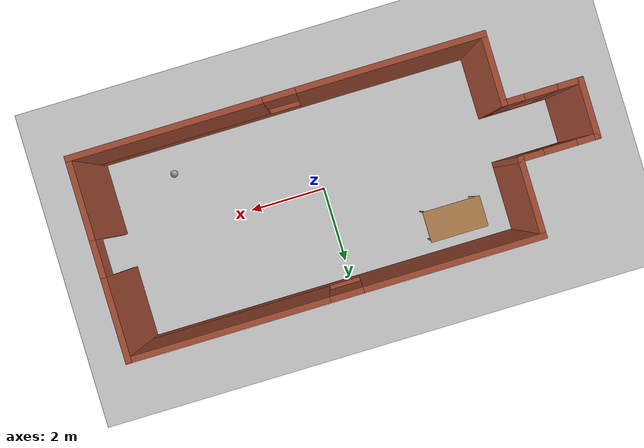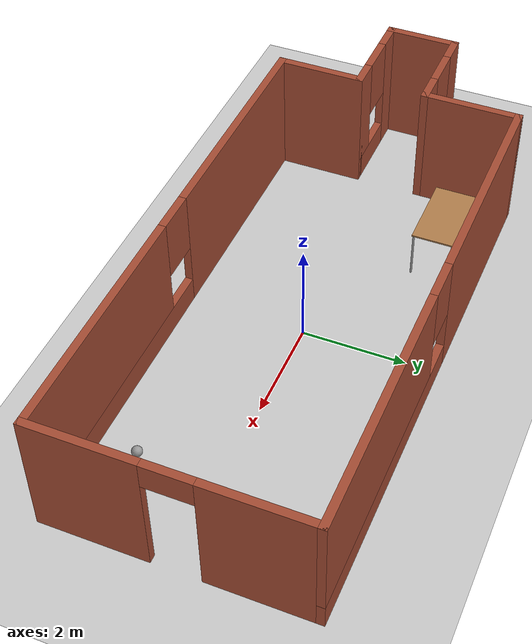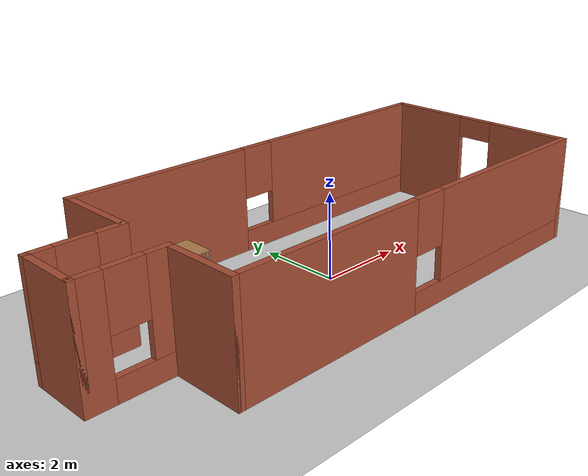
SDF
<sdf version="1.6">
 <world name="default">
  <model name="ground_plane">
   <static>1</static>
   <link name="link">
    <collision name="collision">
     <geometry><plane><normal>0 0 1</normal><size>100 100</size></plane></geometry>
     <surface><friction><ode><mu>100</mu><mu2>50</mu2></ode></friction></surface>
    </collision>
    <visual name="visual">
     <cast_shadows>0</cast_shadows>
     <geometry><plane><normal>0 0 1</normal><size>100 100</size></plane></geometry>
     <material>
      <script><uri>file://media/materials/scripts/gazebo.material</uri><name>Gazebo/Grey</name></script>
     </material>
    </visual>
   </link>
  </model>
  <light name="sun" type="directional">
   <pose>0 0 10 0 -0 0</pose>
   <diffuse>0.8 0.8 0.8 1</diffuse>
   <specular>0.2 0.2 0.2 1</specular>
   <attenuation>
    <range>1000</range>
    <constant>0.9</constant>
    <linear>0.01</linear>
    <quadratic>0.001</quadratic>
   </attenuation>
   <direction>-0.5 0.1 -0.9</direction>
  </light>
  <gravity>0 0 -9.8</gravity>
  <magnetic_field>6e-06 2.3e-05 -4.2e-05</magnetic_field>
  <atmosphere type="adiabatic"/>
  <physics name="default_physics" default="0" type="ode">
   <max_step_size>0.001</max_step_size>
   <real_time_factor>1</real_time_factor>
   <real_time_update_rate>1000</real_time_update_rate>
  </physics>
  <scene><ambient>0.4 0.4 0.4 1</ambient><background>0.7 0.7 0.7 1</background><shadows>1</shadows></scene>
  <spherical_coordinates>
   <surface_model>EARTH_WGS84</surface_model>
   <latitude_deg>0</latitude_deg>
   <longitude_deg>0</longitude_deg>
   <elevation>0</elevation>
   <heading_deg>0</heading_deg>
  </spherical_coordinates>
  <model name="brickbldg">
   <pose>-0.490223 0.105995 0 0 -0 0</pose>
   <link name="Wall_1">
    <pose>0.925 -2.43 0 0 -0 0</pose>
    <visual name="Wall_1_Visual_0">
     <pose>-2.77821 0 1.25 0 -0 0</pose>
     <geometry><box><size>4.59358 0.15 2.5</size></box></geometry>
     <material>
      <script><uri>file://media/materials/scripts/gazebo.material</uri><name>Gazebo/Bricks</name></script>
      <ambient>1 1 1 1</ambient>
     </material>
     <meta><layer>0</layer></meta>
    </visual>
    <collision name="Wall_1_Collision_0">
     <geometry><box><size>4.59358 0.15 2.5</size></box></geometry>
     <pose>-2.77821 0 1.25 0 -0 0</pose>
    </collision>
    <visual name="Wall_1_Visual_1">
     <pose>2.29679 0 0.25 0 -0 0</pose>
     <geometry><box><size>5.55642 0.15 0.5</size></box></geometry>
     <material>
      <script><uri>file://media/materials/scripts/gazebo.material</uri><name>Gazebo/Bricks</name></script>
      <ambient>1 1 1 1</ambient>
     </material>
     <meta><layer>0</layer></meta>
    </visual>
    <collision name="Wall_1_Collision_1">
     <geometry><box><size>5.55642 0.15 0.5</size></box></geometry>
     <pose>2.29679 0 0.25 0 -0 0</pose>
    </collision>
    <visual name="Wall_1_Visual_2">
     <pose>2.69679 0 1.5 0 -0 0</pose>
     <geometry><box><size>4.75642 0.15 2</size></box></geometry>
     <material>
      <script><uri>file://media/materials/scripts/gazebo.material</uri><name>Gazebo/Bricks</name></script>
      <ambient>1 1 1 1</ambient>
     </material>
     <meta><layer>0</layer></meta>
    </visual>
    <collision name="Wall_1_Collision_2">
     <geometry><box><size>4.75642 0.15 2</size></box></geometry>
     <pose>2.69679 0 1.5 0 -0 0</pose>
    </collision>
    <visual name="Wall_1_Visual_3">
     <pose>-0.081422 0 1.9 0 -0 0</pose>
     <geometry><box><size>0.8 0.15 1.2</size></box></geometry>
     <material>
      <script><uri>file://media/materials/scripts/gazebo.material</uri><name>Gazebo/Bricks</name></script>
      <ambient>1 1 1 1</ambient>
     </material>
     <meta><layer>0</layer></meta>
    </visual>
    <collision name="Wall_1_Collision_3">
     <geometry><box><size>0.8 0.15 1.2</size></box></geometry>
     <pose>-0.081422 0 1.9 0 -0 0</pose>
    </collision>
   </link>
   <link name="Wall_17">
    <pose>5.925 -0.005 0 0 -0 1.5708</pose>
    <visual name="Wall_17_Visual_0">
     <pose>-1.47457 0 1.25 0 -0 0</pose>
     <geometry><box><size>2.05086 0.15 2.5</size></box></geometry>
     <material>
      <script><uri>file://media/materials/scripts/gazebo.material</uri><name>Gazebo/Bricks</name></script>
      <ambient>1 1 1 1</ambient>
     </material>
     <meta><layer>0</layer></meta>
    </visual>
    <collision name="Wall_17_Collision_0">
     <geometry><box><size>2.05086 0.15 2.5</size></box></geometry>
     <pose>-1.47457 0 1.25 0 -0 0</pose>
    </collision>
    <visual name="Wall_17_Visual_1">
     <pose>1.47543 0 1.25 0 -0 0</pose>
     <geometry><box><size>2.04914 0.15 2.5</size></box></geometry>
     <material>
      <script><uri>file://media/materials/scripts/gazebo.material</uri><name>Gazebo/Bricks</name></script>
      <ambient>1 1 1 1</ambient>
     </material>
     <meta><layer>0</layer></meta>
    </visual>
    <collision name="Wall_17_Collision_1">
     <geometry><box><size>2.04914 0.15 2.5</size></box></geometry>
     <pose>1.47543 0 1.25 0 -0 0</pose>
    </collision>
    <visual name="Wall_17_Visual_2">
     <pose>0.000861 0 2.25 0 -0 0</pose>
     <geometry><box><size>0.9 0.15 0.5</size></box></geometry>
     <material>
      <script><uri>file://media/materials/scripts/gazebo.material</uri><name>Gazebo/Bricks</name></script>
      <ambient>1 1 1 1</ambient>
     </material>
     <meta><layer>0</layer></meta>
    </visual>
    <collision name="Wall_17_Collision_2">
     <geometry><box><size>0.9 0.15 0.5</size></box></geometry>
     <pose>0.000861 0 2.25 0 -0 0</pose>
    </collision>
   </link>
   <link name="Wall_20">
    <pose>0.925 2.43 0 0 -0 0</pose>
    <visual name="Wall_20_Visual_0">
     <pose>-2.87073 0 1.25 0 -0 0</pose>
     <geometry><box><size>4.40853 0.15 2.5</size></box></geometry>
     <material>
      <script><uri>file://media/materials/scripts/gazebo.material</uri><name>Gazebo/Bricks</name></script>
      <ambient>1 1 1 1</ambient>
     </material>
     <meta><layer>0</layer></meta>
    </visual>
    <collision name="Wall_20_Collision_0">
     <geometry><box><size>4.40853 0.15 2.5</size></box></geometry>
     <pose>-2.87073 0 1.25 0 -0 0</pose>
    </collision>
    <visual name="Wall_20_Visual_1">
     <pose>2.20427 0 0.25 0 -0 0</pose>
     <geometry><box><size>5.74147 0.15 0.5</size></box></geometry>
     <material>
      <script><uri>file://media/materials/scripts/gazebo.material</uri><name>Gazebo/Bricks</name></script>
      <ambient>1 1 1 1</ambient>
     </material>
     <meta><layer>0</layer></meta>
    </visual>
    <collision name="Wall_20_Collision_1">
     <geometry><box><size>5.74147 0.15 0.5</size></box></geometry>
     <pose>2.20427 0 0.25 0 -0 0</pose>
    </collision>
    <visual name="Wall_20_Visual_2">
     <pose>2.60427 0 1.5 0 -0 0</pose>
     <geometry><box><size>4.94147 0.15 2</size></box></geometry>
     <material>
      <script><uri>file://media/materials/scripts/gazebo.material</uri><name>Gazebo/Bricks</name></script>
      <ambient>1 1 1 1</ambient>
     </material>
     <meta><layer>0</layer></meta>
    </visual>
    <collision name="Wall_20_Collision_2">
     <geometry><box><size>4.94147 0.15 2</size></box></geometry>
     <pose>2.60427 0 1.5 0 -0 0</pose>
    </collision>
    <visual name="Wall_20_Visual_3">
     <pose>-0.266467 0 1.9 0 -0 0</pose>
     <geometry><box><size>0.8 0.15 1.2</size></box></geometry>
     <material>
      <script><uri>file://media/materials/scripts/gazebo.material</uri><name>Gazebo/Bricks</name></script>
      <ambient>1 1 1 1</ambient>
     </material>
     <meta><layer>0</layer></meta>
    </visual>
    <collision name="Wall_20_Collision_3">
     <geometry><box><size>0.8 0.15 1.2</size></box></geometry>
     <pose>-0.266467 0 1.9 0 -0 0</pose>
    </collision>
   </link>
   <link name="Wall_22">
    <collision name="Wall_22_Collision">
     <geometry><box><size>2 0.15 2.5</size></box></geometry>
     <pose>0 0 1.25 0 -0 0</pose>
    </collision>
    <visual name="Wall_22_Visual">
     <pose>0 0 1.25 0 -0 0</pose>
     <geometry><box><size>2 0.15 2.5</size></box></geometry>
     <material>
      <script><uri>file://media/materials/scripts/gazebo.material</uri><name>Gazebo/Bricks</name></script>
      <ambient>1 1 1 1</ambient>
     </material>
     <meta><layer>0</layer></meta>
    </visual>
    <pose>-4.075 1.505 0 0 0 -1.5708</pose>
   </link>
   <link name="Wall_23">
    <pose>-5 0.58 0 0 -0 3.14159</pose>
    <visual name="Wall_23_Visual_0">
     <pose>-0.684202 0 1.25 0 -0 0</pose>
     <geometry><box><size>0.631596 0.15 2.5</size></box></geometry>
     <material>
      <script><uri>file://media/materials/scripts/gazebo.material</uri><name>Gazebo/Bricks</name></script>
      <ambient>1 1 1 1</ambient>
     </material>
     <meta><layer>0</layer></meta>
    </visual>
    <collision name="Wall_23_Collision_0">
     <geometry><box><size>0.631596 0.15 2.5</size></box></geometry>
     <pose>-0.684202 0 1.25 0 -0 0</pose>
    </collision>
    <visual name="Wall_23_Visual_1">
     <pose>0.315798 0 0.25 0 -0 0</pose>
     <geometry><box><size>1.3684 0.15 0.5</size></box></geometry>
     <material>
      <script><uri>file://media/materials/scripts/gazebo.material</uri><name>Gazebo/Bricks</name></script>
      <ambient>1 1 1 1</ambient>
     </material>
     <meta><layer>0</layer></meta>
    </visual>
    <collision name="Wall_23_Collision_1">
     <geometry><box><size>1.3684 0.15 0.5</size></box></geometry>
     <pose>0.315798 0 0.25 0 -0 0</pose>
    </collision>
    <visual name="Wall_23_Visual_2">
     <pose>0.715798 0 1.5 0 -0 0</pose>
     <geometry><box><size>0.568404 0.15 2</size></box></geometry>
     <material>
      <script><uri>file://media/materials/scripts/gazebo.material</uri><name>Gazebo/Bricks</name></script>
      <ambient>1 1 1 1</ambient>
     </material>
     <meta><layer>0</layer></meta>
    </visual>
    <collision name="Wall_23_Collision_2">
     <geometry><box><size>0.568404 0.15 2</size></box></geometry>
     <pose>0.715798 0 1.5 0 -0 0</pose>
    </collision>
    <visual name="Wall_23_Visual_3">
     <pose>0.031596 0 1.9 0 -0 0</pose>
     <geometry><box><size>0.8 0.15 1.2</size></box></geometry>
     <material>
      <script><uri>file://media/materials/scripts/gazebo.material</uri><name>Gazebo/Bricks</name></script>
      <ambient>1 1 1 1</ambient>
     </material>
     <meta><layer>0</layer></meta>
    </visual>
    <collision name="Wall_23_Collision_3">
     <geometry><box><size>0.8 0.15 1.2</size></box></geometry>
     <pose>0.031596 0 1.9 0 -0 0</pose>
    </collision>
   </link>
   <link name="Wall_24">
    <collision name="Wall_24_Collision">
     <geometry><box><size>1.5 0.15 2.5</size></box></geometry>
     <pose>0 0 1.25 0 -0 0</pose>
    </collision>
    <visual name="Wall_24_Visual">
     <pose>0 0 1.25 0 -0 0</pose>
     <geometry><box><size>1.5 0.15 2.5</size></box></geometry>
     <material>
      <script><uri>file://media/materials/scripts/gazebo.material</uri><name>Gazebo/Bricks</name></script>
      <ambient>1 1 1 1</ambient>
     </material>
     <meta><layer>0</layer></meta>
    </visual>
    <pose>-5.925 -0.095 0 0 0 -1.5708</pose>
   </link>
   <link name="Wall_25">
    <pose>-5 -0.77 0 0 -0 0</pose>
    <visual name="Wall_25_Visual_0">
     <pose>-0.681102 0 1.25 0 -0 0</pose>
     <geometry><box><size>0.637796 0.15 2.5</size></box></geometry>
     <material>
      <script><uri>file://media/materials/scripts/gazebo.material</uri><name>Gazebo/Bricks</name></script>
      <ambient>1 1 1 1</ambient>
     </material>
     <meta><layer>0</layer></meta>
    </visual>
    <collision name="Wall_25_Collision_0">
     <geometry><box><size>0.637796 0.15 2.5</size></box></geometry>
     <pose>-0.681102 0 1.25 0 -0 0</pose>
    </collision>
    <visual name="Wall_25_Visual_1">
     <pose>0.318898 0 0.25 0 -0 0</pose>
     <geometry><box><size>1.3622 0.15 0.5</size></box></geometry>
     <material>
      <script><uri>file://media/materials/scripts/gazebo.material</uri><name>Gazebo/Bricks</name></script>
      <ambient>1 1 1 1</ambient>
     </material>
     <meta><layer>0</layer></meta>
    </visual>
    <collision name="Wall_25_Collision_1">
     <geometry><box><size>1.3622 0.15 0.5</size></box></geometry>
     <pose>0.318898 0 0.25 0 -0 0</pose>
    </collision>
    <visual name="Wall_25_Visual_2">
     <pose>0.718898 0 1.5 0 -0 0</pose>
     <geometry><box><size>0.562204 0.15 2</size></box></geometry>
     <material>
      <script><uri>file://media/materials/scripts/gazebo.material</uri><name>Gazebo/Bricks</name></script>
      <ambient>1 1 1 1</ambient>
     </material>
     <meta><layer>0</layer></meta>
    </visual>
    <collision name="Wall_25_Collision_2">
     <geometry><box><size>0.562204 0.15 2</size></box></geometry>
     <pose>0.718898 0 1.5 0 -0 0</pose>
    </collision>
    <visual name="Wall_25_Visual_3">
     <pose>0.037796 0 1.9 0 -0 0</pose>
     <geometry><box><size>0.8 0.15 1.2</size></box></geometry>
     <material>
      <script><uri>file://media/materials/scripts/gazebo.material</uri><name>Gazebo/Bricks</name></script>
      <ambient>1 1 1 1</ambient>
     </material>
     <meta><layer>0</layer></meta>
    </visual>
    <collision name="Wall_25_Collision_3">
     <geometry><box><size>0.8 0.15 1.2</size></box></geometry>
     <pose>0.037796 0 1.9 0 -0 0</pose>
    </collision>
   </link>
   <link name="Wall_26">
    <collision name="Wall_26_Collision">
     <geometry><box><size>1.81 0.15 2.5</size></box></geometry>
     <pose>0 0 1.25 0 -0 0</pose>
    </collision>
    <visual name="Wall_26_Visual">
     <pose>0 0 1.25 0 -0 0</pose>
     <geometry><box><size>1.81 0.15 2.5</size></box></geometry>
     <material>
      <script><uri>file://media/materials/scripts/gazebo.material</uri><name>Gazebo/Bricks</name></script>
      <ambient>1 1 1 1</ambient>
     </material>
     <meta><layer>0</layer></meta>
    </visual>
    <pose>-4.075 -1.6 0 0 0 -1.5708</pose>
   </link>
   <static>1</static>
  </model>
  <model name="my_ball2">
   <link name="link_0">
    <inertial>
     <mass>1</mass>
     <inertia><ixx>0.1</ixx><ixy>0</ixy><ixz>0</ixz><iyy>0.1</iyy><iyz>0</iyz><izz>0.1</izz></inertia>
    </inertial>
    <visual name="visual">
     <geometry><sphere><radius>0.1</radius></sphere></geometry>
     <material>
      <lighting>1</lighting>
      <script><uri>file://media/materials/scripts/gazebo.material</uri><name>Gazebo/Grey</name></script>
      <shader type="pixel"><normal_map>__default__</normal_map></shader>
      <ambient>1 1 1 1</ambient>
      <diffuse>1 1 1 1</diffuse>
      <specular>1 1 1 1</specular>
      <emissive>1 1 1 1</emissive>
     </material>
    </visual>
    <collision name="collision">
     <geometry><sphere><radius>0.1</radius></sphere></geometry>
     <surface>
      <friction>
       <ode><mu>1</mu><mu2>1</mu2><fdir1>0 0 0</fdir1><slip1>0</slip1><slip2>0</slip2></ode>
       <torsional>
        <coefficient>1</coefficient>
        <patch_radius>0</patch_radius>
        <surface_radius>0</surface_radius>
        <use_patch_radius>1</use_patch_radius>
        <ode><slip>0</slip></ode>
       </torsional>
      </friction>
      <bounce><restitution_coefficient>0</restitution_coefficient><threshold>1e+06</threshold></bounce>
      <contact>
       <collide_without_contact>0</collide_without_contact>
       <collide_without_contact_bitmask>1</collide_without_contact_bitmask>
       <collide_bitmask>1</collide_bitmask>
       <ode>
        <soft_cfm>0</soft_cfm>
        <soft_erp>0.2</soft_erp>
        <kp>1e+13</kp>
        <kd>1</kd>
        <max_vel>0.01</max_vel>
        <min_depth>0</min_depth>
       </ode>
       <bullet>
        <split_impulse>1</split_impulse>
        <split_impulse_penetration_threshold>-0.01</split_impulse_penetration_threshold>
        <soft_cfm>0</soft_cfm>
        <soft_erp>0.2</soft_erp>
        <kp>1e+13</kp>
        <kd>1</kd>
       </bullet>
      </contact>
     </surface>
    </collision>
   </link>
   <static>0</static>
   <pose>3.68786 -1.52092 0.1 0 -0 0</pose>
  </model>
  <model name="table">
   <static>1</static>
   <link name="link">
    <collision name="surface">
     <pose>0 0 1 0 -0 0</pose>
     <geometry><box><size>1.5 0.8 0.03</size></box></geometry>
     <surface><friction><ode><mu>0.6</mu><mu2>0.6</mu2></ode></friction></surface>
    </collision>
    <visual name="visual1">
     <pose>0 0 1 0 -0 0</pose>
     <geometry><box><size>1.5 0.8 0.03</size></box></geometry>
     <material>
      <script><uri>file://media/materials/scripts/gazebo.material</uri><name>Gazebo/Wood</name></script>
     </material>
    </visual>
    <collision name="front_left_leg">
     <pose>0.68 0.38 0.5 0 -0 0</pose>
     <geometry><cylinder><radius>0.02</radius><length>1</length></cylinder></geometry>
    </collision>
    <visual name="front_left_leg">
     <pose>0.68 0.38 0.5 0 -0 0</pose>
     <geometry><cylinder><radius>0.02</radius><length>1</length></cylinder></geometry>
     <material>
      <script><uri>file://media/materials/scripts/gazebo.material</uri><name>Gazebo/Grey</name></script>
     </material>
    </visual>
    <collision name="front_right_leg">
     <pose>0.68 -0.38 0.5 0 -0 0</pose>
     <geometry><cylinder><radius>0.02</radius><length>1</length></cylinder></geometry>
    </collision>
    <visual name="front_right_leg">
     <pose>0.68 -0.38 0.5 0 -0 0</pose>
     <geometry><cylinder><radius>0.02</radius><length>1</length></cylinder></geometry>
     <material>
      <script><uri>file://media/materials/scripts/gazebo.material</uri><name>Gazebo/Grey</name></script>
     </material>
    </visual>
    <collision name="back_right_leg">
     <pose>-0.68 -0.38 0.5 0 -0 0</pose>
     <geometry><cylinder><radius>0.02</radius><length>1</length></cylinder></geometry>
    </collision>
    <visual name="back_right_leg">
     <pose>-0.68 -0.38 0.5 0 -0 0</pose>
     <geometry><cylinder><radius>0.02</radius><length>1</length></cylinder></geometry>
     <material>
      <script><uri>file://media/materials/scripts/gazebo.material</uri><name>Gazebo/Grey</name></script>
     </material>
    </visual>
    <collision name="back_left_leg">
     <pose>-0.68 0.38 0.5 0 -0 0</pose>
     <geometry><cylinder><radius>0.02</radius><length>1</length></cylinder></geometry>
    </collision>
    <visual name="back_left_leg">
     <pose>-0.68 0.38 0.5 0 -0 0</pose>
     <geometry><cylinder><radius>0.02</radius><length>1</length></cylinder></geometry>
     <material>
      <script><uri>file://media/materials/scripts/gazebo.material</uri><name>Gazebo/Grey</name></script>
     </material>
    </visual>
   </link>
   <pose>-2.96821 1.69884 0 0 -0 0</pose>
  </model>
  <plugin filename="libcollision_map_creator.so" name="collision_map_creator"/>
 </world>
</sdf>
